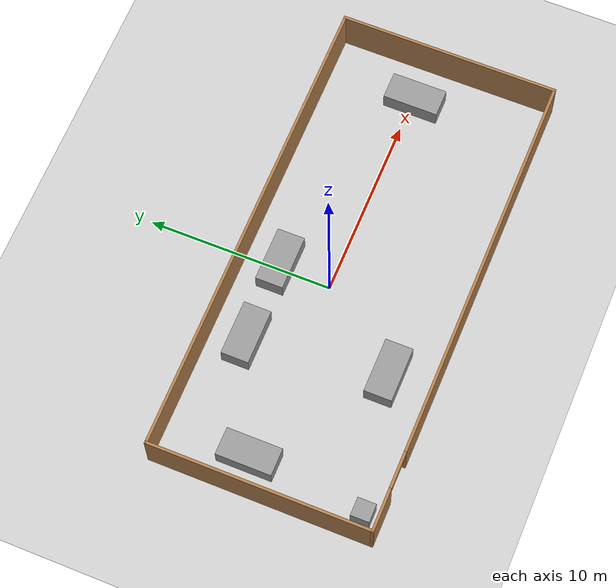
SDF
<sdf version="1.7">
 <world name="default">
  <light name="sun" type="directional">
   <pose>0 0 10 0 -0 0</pose>
   <diffuse>0.8 0.8 0.8 1</diffuse>
   <specular>0.2 0.2 0.2 1</specular>
   <attenuation>
    <range>1000</range>
    <constant>0.9</constant>
    <linear>0.01</linear>
    <quadratic>0.001</quadratic>
   </attenuation>
   <direction>-0.5 0.1 -0.9</direction>
   <spot><inner_angle>0</inner_angle><outer_angle>0</outer_angle><falloff>0</falloff></spot>
  </light>
  <model name="ground_plane">
   <static>1</static>
   <link name="link">
    <collision name="collision">
     <geometry><plane><normal>0 0 1</normal><size>100 100</size></plane></geometry>
     <surface>
      <contact><collide_bitmask>65535</collide_bitmask></contact>
      <friction><ode><mu>100</mu><mu2>50</mu2></ode></friction>
     </surface>
    </collision>
    <visual name="visual">
     <cast_shadows>0</cast_shadows>
     <geometry><plane><normal>0 0 1</normal><size>100 100</size></plane></geometry>
     <material>
      <script><uri>file://media/materials/scripts/gazebo.material</uri><name>Gazebo/Grey</name></script>
     </material>
    </visual>
   </link>
  </model>
  <gravity>0 0 -9.8</gravity>
  <magnetic_field>6e-06 2.3e-05 -4.2e-05</magnetic_field>
  <atmosphere type="adiabatic"/>
  <physics type="ode">
   <max_step_size>0.001</max_step_size>
   <real_time_factor>1</real_time_factor>
   <real_time_update_rate>1000</real_time_update_rate>
  </physics>
  <scene><ambient>0.4 0.4 0.4 1</ambient><background>0.7 0.7 0.7 1</background><shadows>1</shadows></scene>
  <audio><device>default</device></audio>
  <spherical_coordinates>
   <surface_model>EARTH_WGS84</surface_model>
   <latitude_deg>0</latitude_deg>
   <longitude_deg>0</longitude_deg>
   <elevation>0</elevation>
   <heading_deg>0</heading_deg>
  </spherical_coordinates>
  <model name="Lab">
   <pose>1.02513 -1.15996 0 0 -0 0</pose>
   <link name="Wall_69">
    <collision name="Wall_69_Collision">
     <geometry><box><size>12 0.15 2.5</size></box></geometry>
     <pose>0 0 1.25 0 -0 0</pose>
    </collision>
    <visual name="Wall_69_Visual">
     <pose>0 0 1.25 0 -0 0</pose>
     <geometry><box><size>12 0.15 2.5</size></box></geometry>
     <material>
      <script><uri>file://media/materials/scripts/gazebo.material</uri><name>Gazebo/Wood</name></script>
      <ambient>1 1 1 1</ambient>
     </material>
     <meta><layer>0</layer></meta>
    </visual>
    <pose>-12.925 0 0 0 -0 1.5708</pose>
   </link>
   <link name="Wall_70">
    <collision name="Wall_70_Collision">
     <geometry><box><size>26 0.15 2.5</size></box></geometry>
     <pose>0 0 1.25 0 -0 0</pose>
    </collision>
    <visual name="Wall_70_Visual">
     <pose>0 0 1.25 0 -0 0</pose>
     <geometry><box><size>26 0.15 2.5</size></box></geometry>
     <material>
      <script><uri>file://media/materials/scripts/gazebo.material</uri><name>Gazebo/Wood</name></script>
      <ambient>1 1 1 1</ambient>
     </material>
     <meta><layer>0</layer></meta>
    </visual>
    <pose>0 5.925 0 0 -0 0</pose>
   </link>
   <link name="Wall_71">
    <collision name="Wall_71_Collision">
     <geometry><box><size>12 0.15 2.5</size></box></geometry>
     <pose>0 0 1.25 0 -0 0</pose>
    </collision>
    <visual name="Wall_71_Visual">
     <pose>0 0 1.25 0 -0 0</pose>
     <geometry><box><size>12 0.15 2.5</size></box></geometry>
     <material>
      <script><uri>file://media/materials/scripts/gazebo.material</uri><name>Gazebo/Wood</name></script>
      <ambient>1 1 1 1</ambient>
     </material>
     <meta><layer>0</layer></meta>
    </visual>
    <pose>12.925 0 0 0 -0 -1.5708</pose>
   </link>
   <link name="Wall_78">
    <pose>0 -5.925 0 0 -0 0</pose>
    <visual name="Wall_78_Visual_0">
     <pose>-11.8137 0 1.25 0 -0 0</pose>
     <geometry><box><size>2.37257 0.15 2.5</size></box></geometry>
     <material>
      <script><uri>file://media/materials/scripts/gazebo.material</uri><name>Gazebo/Wood</name></script>
      <ambient>1 1 1 1</ambient>
     </material>
     <meta><layer>0</layer></meta>
    </visual>
    <collision name="Wall_78_Collision_0">
     <geometry><box><size>2.37257 0.15 2.5</size></box></geometry>
     <pose>-11.8137 0 1.25 0 -0 0</pose>
    </collision>
    <visual name="Wall_78_Visual_1">
     <pose>2.18629 0 1.25 0 -0 0</pose>
     <geometry><box><size>21.6274 0.15 2.5</size></box></geometry>
     <material>
      <script><uri>file://media/materials/scripts/gazebo.material</uri><name>Gazebo/Wood</name></script>
      <ambient>1 1 1 1</ambient>
     </material>
     <meta><layer>0</layer></meta>
    </visual>
    <collision name="Wall_78_Collision_1">
     <geometry><box><size>21.6274 0.15 2.5</size></box></geometry>
     <pose>2.18629 0 1.25 0 -0 0</pose>
    </collision>
    <visual name="Wall_78_Visual_2">
     <pose>-9.62743 0 2.25 0 -0 0</pose>
     <geometry><box><size>2 0.15 0.5</size></box></geometry>
     <material>
      <script><uri>file://media/materials/scripts/gazebo.material</uri><name>Gazebo/Wood</name></script>
      <ambient>1 1 1 1</ambient>
     </material>
     <meta><layer>0</layer></meta>
    </visual>
    <collision name="Wall_78_Collision_2">
     <geometry><box><size>2 0.15 0.5</size></box></geometry>
     <pose>-9.62743 0 2.25 0 -0 0</pose>
    </collision>
   </link>
   <static>1</static>
  </model>
  <model name="Lab_units_1">
   <link name="link_2_clone_1">
    <inertial>
     <mass>1</mass>
     <inertia>
      <ixx>0.166667</ixx>
      <ixy>0</ixy>
      <ixz>0</ixz>
      <iyy>0.166667</iyy>
      <iyz>0</iyz>
      <izz>0.166667</izz>
     </inertia>
    </inertial>
    <pose>-3.66034 1.39707 0 0 -0 0</pose>
    <visual name="visual">
     <geometry><box><size>3 1.5 1</size></box></geometry>
     <material>
      <lighting>1</lighting>
      <script><uri>file://media/materials/scripts/gazebo.material</uri><name>Gazebo/Grey</name></script>
      <shader type="pixel"><normal_map>__default__</normal_map></shader>
      <ambient>0.3 0.3 0.3 1</ambient>
      <diffuse>0.7 0.7 0.7 1</diffuse>
      <specular>0.01 0.01 0.01 1</specular>
      <emissive>0 0 0 1</emissive>
     </material>
    </visual>
    <collision name="collision">
     <geometry><box><size>3 1.5 1</size></box></geometry>
     <surface>
      <friction>
       <ode><mu>1</mu><mu2>1</mu2><fdir1>0 0 0</fdir1><slip1>0</slip1><slip2>0</slip2></ode>
       <torsional>
        <coefficient>1</coefficient>
        <patch_radius>0</patch_radius>
        <surface_radius>0</surface_radius>
        <use_patch_radius>1</use_patch_radius>
        <ode><slip>0</slip></ode>
       </torsional>
      </friction>
      <bounce><restitution_coefficient>0</restitution_coefficient><threshold>1e+06</threshold></bounce>
      <contact>
       <collide_without_contact>0</collide_without_contact>
       <collide_without_contact_bitmask>1</collide_without_contact_bitmask>
       <collide_bitmask>1</collide_bitmask>
       <ode>
        <soft_cfm>0</soft_cfm>
        <soft_erp>0.2</soft_erp>
        <kp>1e+13</kp>
        <kd>1</kd>
        <max_vel>0.01</max_vel>
        <min_depth>0</min_depth>
       </ode>
       <bullet>
        <split_impulse>1</split_impulse>
        <split_impulse_penetration_threshold>-0.01</split_impulse_penetration_threshold>
        <soft_cfm>0</soft_cfm>
        <soft_erp>0.2</soft_erp>
        <kp>1e+13</kp>
        <kd>1</kd>
       </bullet>
      </contact>
     </surface>
    </collision>
   </link>
   <link name="link_2_clone_1_clone">
    <inertial>
     <mass>1</mass>
     <inertia>
      <ixx>0.166667</ixx>
      <ixy>0</ixy>
      <ixz>0</ixz>
      <iyy>0.166667</iyy>
      <iyz>0</iyz>
      <izz>0.166667</izz>
     </inertia>
    </inertial>
    <pose>0.768997 1.38898 0 0 -0 0</pose>
    <visual name="visual">
     <geometry><box><size>3 1.5 1</size></box></geometry>
     <material>
      <lighting>1</lighting>
      <script><uri>file://media/materials/scripts/gazebo.material</uri><name>Gazebo/Grey</name></script>
      <shader type="pixel"><normal_map>__default__</normal_map></shader>
      <ambient>0.3 0.3 0.3 1</ambient>
      <diffuse>0.7 0.7 0.7 1</diffuse>
      <specular>0.01 0.01 0.01 1</specular>
      <emissive>0 0 0 1</emissive>
     </material>
    </visual>
    <collision name="collision">
     <geometry><box><size>3 1.5 1</size></box></geometry>
     <surface>
      <friction>
       <ode><mu>1</mu><mu2>1</mu2><fdir1>0 0 0</fdir1><slip1>0</slip1><slip2>0</slip2></ode>
       <torsional>
        <coefficient>1</coefficient>
        <patch_radius>0</patch_radius>
        <surface_radius>0</surface_radius>
        <use_patch_radius>1</use_patch_radius>
        <ode><slip>0</slip></ode>
       </torsional>
      </friction>
      <bounce><restitution_coefficient>0</restitution_coefficient><threshold>1e+06</threshold></bounce>
      <contact>
       <collide_without_contact>0</collide_without_contact>
       <collide_without_contact_bitmask>1</collide_without_contact_bitmask>
       <collide_bitmask>1</collide_bitmask>
       <ode>
        <soft_cfm>0</soft_cfm>
        <soft_erp>0.2</soft_erp>
        <kp>1e+13</kp>
        <kd>1</kd>
        <max_vel>0.01</max_vel>
        <min_depth>0</min_depth>
       </ode>
       <bullet>
        <split_impulse>1</split_impulse>
        <split_impulse_penetration_threshold>-0.01</split_impulse_penetration_threshold>
        <soft_cfm>0</soft_cfm>
        <soft_erp>0.2</soft_erp>
        <kp>1e+13</kp>
        <kd>1</kd>
       </bullet>
      </contact>
     </surface>
    </collision>
   </link>
   <link name="link_2_clone_1_clone_0">
    <inertial>
     <mass>1</mass>
     <inertia>
      <ixx>0.166667</ixx>
      <ixy>0</ixy>
      <ixz>0</ixz>
      <iyy>0.166667</iyy>
      <iyz>0</iyz>
      <izz>0.166667</izz>
     </inertia>
    </inertial>
    <pose>-2.85909 -6.02453 0 0 -0 0</pose>
    <visual name="visual">
     <geometry><box><size>3 1.5 1</size></box></geometry>
     <material>
      <lighting>1</lighting>
      <script><uri>file://media/materials/scripts/gazebo.material</uri><name>Gazebo/Grey</name></script>
      <shader type="pixel"><normal_map>__default__</normal_map></shader>
      <ambient>0.3 0.3 0.3 1</ambient>
      <diffuse>0.7 0.7 0.7 1</diffuse>
      <specular>0.01 0.01 0.01 1</specular>
      <emissive>0 0 0 1</emissive>
     </material>
    </visual>
    <collision name="collision">
     <geometry><box><size>3 1.5 1</size></box></geometry>
     <surface>
      <friction>
       <ode><mu>1</mu><mu2>1</mu2><fdir1>0 0 0</fdir1><slip1>0</slip1><slip2>0</slip2></ode>
       <torsional>
        <coefficient>1</coefficient>
        <patch_radius>0</patch_radius>
        <surface_radius>0</surface_radius>
        <use_patch_radius>1</use_patch_radius>
        <ode><slip>0</slip></ode>
       </torsional>
      </friction>
      <bounce><restitution_coefficient>0</restitution_coefficient><threshold>1e+06</threshold></bounce>
      <contact>
       <collide_without_contact>0</collide_without_contact>
       <collide_without_contact_bitmask>1</collide_without_contact_bitmask>
       <collide_bitmask>1</collide_bitmask>
       <ode>
        <soft_cfm>0</soft_cfm>
        <soft_erp>0.2</soft_erp>
        <kp>1e+13</kp>
        <kd>1</kd>
        <max_vel>0.01</max_vel>
        <min_depth>0</min_depth>
       </ode>
       <bullet>
        <split_impulse>1</split_impulse>
        <split_impulse_penetration_threshold>-0.01</split_impulse_penetration_threshold>
        <soft_cfm>0</soft_cfm>
        <soft_erp>0.2</soft_erp>
        <kp>1e+13</kp>
        <kd>1</kd>
       </bullet>
      </contact>
     </surface>
    </collision>
   </link>
   <link name="link_2_clone_1_clone_0_clone">
    <inertial>
     <mass>1</mass>
     <inertia>
      <ixx>0.166667</ixx>
      <ixy>0</ixy>
      <ixz>0</ixz>
      <iyy>0.166667</iyy>
      <iyz>0</iyz>
      <izz>0.166667</izz>
     </inertia>
    </inertial>
    <pose>-10.106 -7.56056 0 0 -0 0</pose>
    <visual name="visual">
     <geometry><box><size>1 1 1</size></box></geometry>
     <material>
      <lighting>1</lighting>
      <script><uri>file://media/materials/scripts/gazebo.material</uri><name>Gazebo/Grey</name></script>
      <shader type="pixel"><normal_map>__default__</normal_map></shader>
      <ambient>0.3 0.3 0.3 1</ambient>
      <diffuse>0.7 0.7 0.7 1</diffuse>
      <specular>0.01 0.01 0.01 1</specular>
      <emissive>0 0 0 1</emissive>
     </material>
    </visual>
    <collision name="collision">
     <geometry><box><size>1 1 1</size></box></geometry>
     <surface>
      <friction>
       <ode><mu>1</mu><mu2>1</mu2><fdir1>0 0 0</fdir1><slip1>0</slip1><slip2>0</slip2></ode>
       <torsional>
        <coefficient>1</coefficient>
        <patch_radius>0</patch_radius>
        <surface_radius>0</surface_radius>
        <use_patch_radius>1</use_patch_radius>
        <ode><slip>0</slip></ode>
       </torsional>
      </friction>
      <bounce><restitution_coefficient>0</restitution_coefficient><threshold>1e+06</threshold></bounce>
      <contact>
       <collide_without_contact>0</collide_without_contact>
       <collide_without_contact_bitmask>1</collide_without_contact_bitmask>
       <collide_bitmask>1</collide_bitmask>
       <ode>
        <soft_cfm>0</soft_cfm>
        <soft_erp>0.2</soft_erp>
        <kp>1e+13</kp>
        <kd>1</kd>
        <max_vel>0.01</max_vel>
        <min_depth>0</min_depth>
       </ode>
       <bullet>
        <split_impulse>1</split_impulse>
        <split_impulse_penetration_threshold>-0.01</split_impulse_penetration_threshold>
        <soft_cfm>0</soft_cfm>
        <soft_erp>0.2</soft_erp>
        <kp>1e+13</kp>
        <kd>1</kd>
       </bullet>
      </contact>
     </surface>
    </collision>
   </link>
   <link name="link_2_clone_1_clone_clone">
    <inertial>
     <mass>1</mass>
     <inertia>
      <ixx>0.166667</ixx>
      <ixy>0</ixy>
      <ixz>0</ixz>
      <iyy>0.166667</iyy>
      <iyz>0</iyz>
      <izz>0.166667</izz>
     </inertia>
    </inertial>
    <pose>12.3419 -1.55793 0 0 0 -1.57317</pose>
    <visual name="visual">
     <geometry><box><size>3 1.5 1</size></box></geometry>
     <material>
      <lighting>1</lighting>
      <script><uri>file://media/materials/scripts/gazebo.material</uri><name>Gazebo/Grey</name></script>
      <shader type="pixel"><normal_map>__default__</normal_map></shader>
      <ambient>0.3 0.3 0.3 1</ambient>
      <diffuse>0.7 0.7 0.7 1</diffuse>
      <specular>0.01 0.01 0.01 1</specular>
      <emissive>0 0 0 1</emissive>
     </material>
    </visual>
    <collision name="collision">
     <geometry><box><size>3 1.5 1</size></box></geometry>
     <surface>
      <friction>
       <ode><mu>1</mu><mu2>1</mu2><fdir1>0 0 0</fdir1><slip1>0</slip1><slip2>0</slip2></ode>
       <torsional>
        <coefficient>1</coefficient>
        <patch_radius>0</patch_radius>
        <surface_radius>0</surface_radius>
        <use_patch_radius>1</use_patch_radius>
        <ode><slip>0</slip></ode>
       </torsional>
      </friction>
      <bounce><restitution_coefficient>0</restitution_coefficient><threshold>1e+06</threshold></bounce>
      <contact>
       <collide_without_contact>0</collide_without_contact>
       <collide_without_contact_bitmask>1</collide_without_contact_bitmask>
       <collide_bitmask>1</collide_bitmask>
       <ode>
        <soft_cfm>0</soft_cfm>
        <soft_erp>0.2</soft_erp>
        <kp>1e+13</kp>
        <kd>1</kd>
        <max_vel>0.01</max_vel>
        <min_depth>0</min_depth>
       </ode>
       <bullet>
        <split_impulse>1</split_impulse>
        <split_impulse_penetration_threshold>-0.01</split_impulse_penetration_threshold>
        <soft_cfm>0</soft_cfm>
        <soft_erp>0.2</soft_erp>
        <kp>1e+13</kp>
        <kd>1</kd>
       </bullet>
      </contact>
     </surface>
    </collision>
   </link>
   <link name="link_2_clone_clone_0_clone_clone_clone">
    <inertial>
     <mass>1</mass>
     <inertia>
      <ixx>0.166667</ixx>
      <ixy>0</ixy>
      <ixz>0</ixz>
      <iyy>0.166667</iyy>
      <iyz>0</iyz>
      <izz>0.166667</izz>
     </inertia>
    </inertial>
    <pose>-9.45052 -1.22812 0 0 -0 0</pose>
    <visual name="visual">
     <geometry><box><size>1.5 3 1</size></box></geometry>
     <material>
      <lighting>1</lighting>
      <script><uri>file://media/materials/scripts/gazebo.material</uri><name>Gazebo/Grey</name></script>
      <shader type="pixel"><normal_map>__default__</normal_map></shader>
      <ambient>0.3 0.3 0.3 1</ambient>
      <diffuse>0.7 0.7 0.7 1</diffuse>
      <specular>0.01 0.01 0.01 1</specular>
      <emissive>0 0 0 1</emissive>
     </material>
    </visual>
    <collision name="collision">
     <geometry><box><size>1.5 3 1</size></box></geometry>
     <surface>
      <friction>
       <ode><mu>1</mu><mu2>1</mu2><fdir1>0 0 0</fdir1><slip1>0</slip1><slip2>0</slip2></ode>
       <torsional>
        <coefficient>1</coefficient>
        <patch_radius>0</patch_radius>
        <surface_radius>0</surface_radius>
        <use_patch_radius>1</use_patch_radius>
        <ode><slip>0</slip></ode>
       </torsional>
      </friction>
      <bounce><restitution_coefficient>0</restitution_coefficient><threshold>1e+06</threshold></bounce>
      <contact>
       <collide_without_contact>0</collide_without_contact>
       <collide_without_contact_bitmask>1</collide_without_contact_bitmask>
       <collide_bitmask>1</collide_bitmask>
       <ode>
        <soft_cfm>0</soft_cfm>
        <soft_erp>0.2</soft_erp>
        <kp>1e+13</kp>
        <kd>1</kd>
        <max_vel>0.01</max_vel>
        <min_depth>0</min_depth>
       </ode>
       <bullet>
        <split_impulse>1</split_impulse>
        <split_impulse_penetration_threshold>-0.01</split_impulse_penetration_threshold>
        <soft_cfm>0</soft_cfm>
        <soft_erp>0.2</soft_erp>
        <kp>1e+13</kp>
        <kd>1</kd>
       </bullet>
      </contact>
     </surface>
    </collision>
   </link>
   <static>0</static>
   <pose>-0.545765 1.43402 0.5 0 -0 0</pose>
  </model>
 </world>
</sdf>
